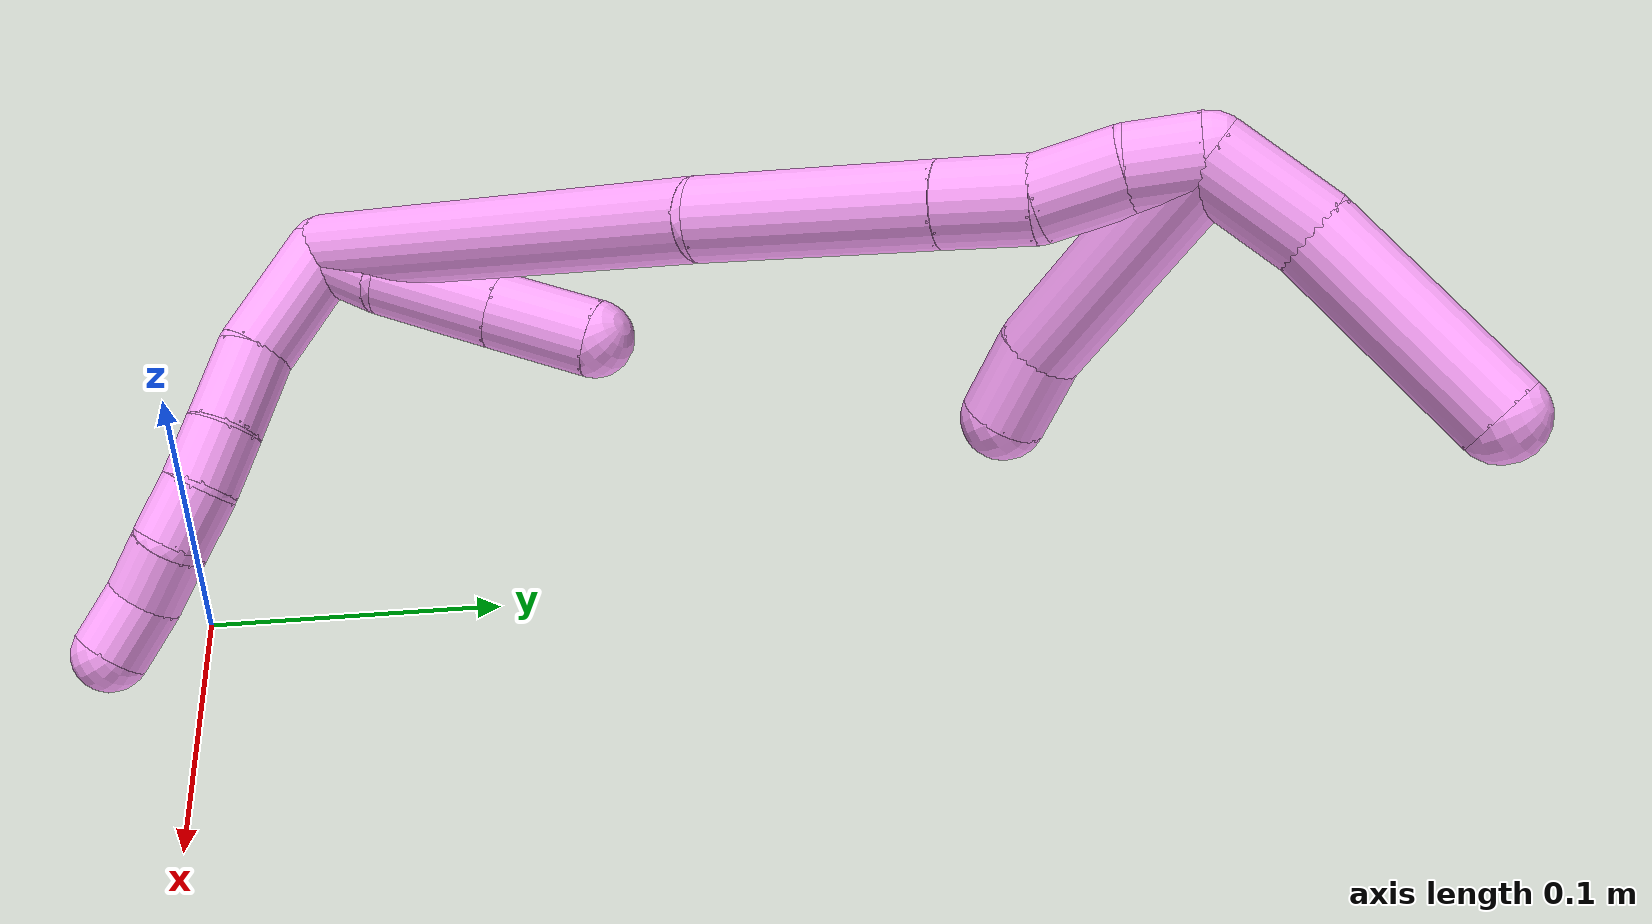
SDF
<sdf version="1.7">
 <world name="default">
  <model name="4">
   <static>0</static>
   <link name="4">
    <collision name="collision-cylinder-e_1_2_8">
     <pose>0.017571 -0.004792 -0.009901 2.69079 1.01147 2.35645</pose>
     <geometry><cylinder><radius>0.0125</radius><length>0.04146</length></cylinder></geometry>
     <surface>
      <friction><ode><mu>1.16</mu><mu2>1.16</mu2><slip1>0</slip1><slip2>0</slip2></ode></friction>
      <contact><ode><kp>1e+06</kp><kd>1</kd><max_vel>0</max_vel><min_depth>0.001</min_depth></ode></contact>
     </surface>
    </collision>
    <visual name="visual-cylinder-e_1_2_8">
     <pose>0.017571 -0.004792 -0.009901 2.69079 1.01147 2.35645</pose>
     <geometry><cylinder><radius>0.0125</radius><length>0.04146</length></cylinder></geometry>
     <material><ambient>1 0.65098 0.996078 1</ambient></material>
    </visual>
    <collision name="collision-cylinder-e_2_8_9">
     <pose>0.047732 -0.010441 -0.024837 2.97323 1.18536 2.89229</pose>
     <geometry><cylinder><radius>0.0125</radius><length>0.027173</length></cylinder></geometry>
     <surface>
      <friction><ode><mu>1.16</mu><mu2>1.16</mu2><slip1>0</slip1><slip2>0</slip2></ode></friction>
      <contact><ode><kp>1e+06</kp><kd>1</kd><max_vel>0</max_vel><min_depth>0.001</min_depth></ode></contact>
     </surface>
    </collision>
    <visual name="visual-cylinder-e_2_8_9">
     <pose>0.047732 -0.010441 -0.024837 2.97323 1.18536 2.89229</pose>
     <geometry><cylinder><radius>0.0125</radius><length>0.027173</length></cylinder></geometry>
     <material><ambient>1 0.65098 0.996078 1</ambient></material>
    </visual>
    <collision name="collision-cylinder-e_3_9_10">
     <pose>0.069387 -0.011506 -0.034481 3.09629 1.10013 3.06773</pose>
     <geometry><cylinder><radius>0.0125</radius><length>0.020344</length></cylinder></geometry>
     <surface>
      <friction><ode><mu>1.16</mu><mu2>1.16</mu2><slip1>0</slip1><slip2>0</slip2></ode></friction>
      <contact><ode><kp>1e+06</kp><kd>1</kd><max_vel>0</max_vel><min_depth>0.001</min_depth></ode></contact>
     </surface>
    </collision>
    <visual name="visual-cylinder-e_3_9_10">
     <pose>0.069387 -0.011506 -0.034481 3.09629 1.10013 3.06773</pose>
     <geometry><cylinder><radius>0.0125</radius><length>0.020344</length></cylinder></geometry>
     <material><ambient>1 0.65098 0.996078 1</ambient></material>
    </visual>
    <collision name="collision-cylinder-e_4_10_11">
     <pose>0.086561 -0.011788 -0.045192 3.12958 0.925475 3.11752</pose>
     <geometry><cylinder><radius>0.0125</radius><length>0.020298</length></cylinder></geometry>
     <surface>
      <friction><ode><mu>1.16</mu><mu2>1.16</mu2><slip1>0</slip1><slip2>0</slip2></ode></friction>
      <contact><ode><kp>1e+06</kp><kd>1</kd><max_vel>0</max_vel><min_depth>0.001</min_depth></ode></contact>
     </surface>
    </collision>
    <visual name="visual-cylinder-e_4_10_11">
     <pose>0.086561 -0.011788 -0.045192 3.12958 0.925475 3.11752</pose>
     <geometry><cylinder><radius>0.0125</radius><length>0.020298</length></cylinder></geometry>
     <material><ambient>1 0.65098 0.996078 1</ambient></material>
    </visual>
    <collision name="collision-cylinder-e_5_11_12">
     <pose>0.10078 -0.010299 -0.059072 -2.94333 0.656493 -2.57333</pose>
     <geometry><cylinder><radius>0.0125</radius><length>0.020024</length></cylinder></geometry>
     <surface>
      <friction><ode><mu>1.16</mu><mu2>1.16</mu2><slip1>0</slip1><slip2>0</slip2></ode></friction>
      <contact><ode><kp>1e+06</kp><kd>1</kd><max_vel>0</max_vel><min_depth>0.001</min_depth></ode></contact>
     </surface>
    </collision>
    <visual name="visual-cylinder-e_5_11_12">
     <pose>0.10078 -0.010299 -0.059072 -2.94333 0.656493 -2.57333</pose>
     <geometry><cylinder><radius>0.0125</radius><length>0.020024</length></cylinder></geometry>
     <material><ambient>1 0.65098 0.996078 1</ambient></material>
    </visual>
    <collision name="collision-cylinder-e_6_12_6">
     <pose>0.114513 -0.0092 -0.073835 3.07534 0.827685 2.99098</pose>
     <geometry><cylinder><radius>0.0125</radius><length>0.020702</length></cylinder></geometry>
     <surface>
      <friction><ode><mu>1.16</mu><mu2>1.16</mu2><slip1>0</slip1><slip2>0</slip2></ode></friction>
      <contact><ode><kp>1e+06</kp><kd>1</kd><max_vel>0</max_vel><min_depth>0.001</min_depth></ode></contact>
     </surface>
    </collision>
    <visual name="visual-cylinder-e_6_12_6">
     <pose>0.114513 -0.0092 -0.073835 3.07534 0.827685 2.99098</pose>
     <geometry><cylinder><radius>0.0125</radius><length>0.020702</length></cylinder></geometry>
     <material><ambient>1 0.65098 0.996078 1</ambient></material>
    </visual>
    <collision name="collision-cylinder-e_1_2_13">
     <pose>0.007215 0.005088 0.009901 -0.474741 0.57506 -0.142847</pose>
     <geometry><cylinder><radius>0.0125</radius><length>0.026531</length></cylinder></geometry>
     <surface>
      <friction><ode><mu>1.16</mu><mu2>1.16</mu2><slip1>0</slip1><slip2>0</slip2></ode></friction>
      <contact><ode><kp>1e+06</kp><kd>1</kd><max_vel>0</max_vel><min_depth>0.001</min_depth></ode></contact>
     </surface>
    </collision>
    <visual name="visual-cylinder-e_1_2_13">
     <pose>0.007215 0.005088 0.009901 -0.474741 0.57506 -0.142847</pose>
     <geometry><cylinder><radius>0.0125</radius><length>0.026531</length></cylinder></geometry>
     <material><ambient>1 0.65098 0.996078 1</ambient></material>
    </visual>
    <collision name="collision-cylinder-e_2_13_14">
     <pose>0.021866 0.021792 0.034136 -0.681007 0.383125 -0.137212</pose>
     <geometry><cylinder><radius>0.0125</radius><length>0.039784</length></cylinder></geometry>
     <surface>
      <friction><ode><mu>1.16</mu><mu2>1.16</mu2><slip1>0</slip1><slip2>0</slip2></ode></friction>
      <contact><ode><kp>1e+06</kp><kd>1</kd><max_vel>0</max_vel><min_depth>0.001</min_depth></ode></contact>
     </surface>
    </collision>
    <visual name="visual-cylinder-e_2_13_14">
     <pose>0.021866 0.021792 0.034136 -0.681007 0.383125 -0.137212</pose>
     <geometry><cylinder><radius>0.0125</radius><length>0.039784</length></cylinder></geometry>
     <material><ambient>1 0.65098 0.996078 1</ambient></material>
    </visual>
    <collision name="collision-cylinder-e_3_14_5">
     <pose>0.03556 0.043151 0.060701 -0.672682 0.380704 -0.134532</pose>
     <geometry><cylinder><radius>0.0125</radius><length>0.033685</length></cylinder></geometry>
     <surface>
      <friction><ode><mu>1.16</mu><mu2>1.16</mu2><slip1>0</slip1><slip2>0</slip2></ode></friction>
      <contact><ode><kp>1e+06</kp><kd>1</kd><max_vel>0</max_vel><min_depth>0.001</min_depth></ode></contact>
     </surface>
    </collision>
    <visual name="visual-cylinder-e_3_14_5">
     <pose>0.03556 0.043151 0.060701 -0.672682 0.380704 -0.134532</pose>
     <geometry><cylinder><radius>0.0125</radius><length>0.033685</length></cylinder></geometry>
     <material><ambient>1 0.65098 0.996078 1</ambient></material>
    </visual>
    <collision name="collision-cylinder-e_1_2_15">
     <pose>0.024437 0.010792 0.07258 -0.147604 0.321479 -0.023975</pose>
     <geometry><cylinder><radius>0.0125</radius><length>0.154681</length></cylinder></geometry>
     <surface>
      <friction><ode><mu>1.16</mu><mu2>1.16</mu2><slip1>0</slip1><slip2>0</slip2></ode></friction>
      <contact><ode><kp>1e+06</kp><kd>1</kd><max_vel>0</max_vel><min_depth>0.001</min_depth></ode></contact>
     </surface>
    </collision>
    <visual name="visual-cylinder-e_1_2_15">
     <pose>0.024437 0.010792 0.07258 -0.147604 0.321479 -0.023975</pose>
     <geometry><cylinder><radius>0.0125</radius><length>0.154681</length></cylinder></geometry>
     <material><ambient>1 0.65098 0.996078 1</ambient></material>
    </visual>
    <collision name="collision-cylinder-e_2_15_16">
     <pose>0.056119 0.034529 0.178164 -0.373817 0.201579 -0.038247</pose>
     <geometry><cylinder><radius>0.0125</radius><length>0.072369</length></cylinder></geometry>
     <surface>
      <friction><ode><mu>1.16</mu><mu2>1.16</mu2><slip1>0</slip1><slip2>0</slip2></ode></friction>
      <contact><ode><kp>1e+06</kp><kd>1</kd><max_vel>0</max_vel><min_depth>0.001</min_depth></ode></contact>
     </surface>
    </collision>
    <visual name="visual-cylinder-e_2_15_16">
     <pose>0.056119 0.034529 0.178164 -0.373817 0.201579 -0.038247</pose>
     <geometry><cylinder><radius>0.0125</radius><length>0.072369</length></cylinder></geometry>
     <material><ambient>1 0.65098 0.996078 1</ambient></material>
    </visual>
    <collision name="collision-cylinder-e_3_16_17">
     <pose>0.066026 0.052603 0.22354 -0.392926 0.196175 -0.039165</pose>
     <geometry><cylinder><radius>0.0125</radius><length>0.02731</length></cylinder></geometry>
     <surface>
      <friction><ode><mu>1.16</mu><mu2>1.16</mu2><slip1>0</slip1><slip2>0</slip2></ode></friction>
      <contact><ode><kp>1e+06</kp><kd>1</kd><max_vel>0</max_vel><min_depth>0.001</min_depth></ode></contact>
     </surface>
    </collision>
    <visual name="visual-cylinder-e_3_16_17">
     <pose>0.066026 0.052603 0.22354 -0.392926 0.196175 -0.039165</pose>
     <geometry><cylinder><radius>0.0125</radius><length>0.02731</length></cylinder></geometry>
     <material><ambient>1 0.65098 0.996078 1</ambient></material>
    </visual>
    <collision name="collision-cylinder-e_4_17_18">
     <pose>0.068147 0.061119 0.247955 -0.274183 -0.043132 0.005951</pose>
     <geometry><cylinder><radius>0.0125</radius><length>0.025042</length></cylinder></geometry>
     <surface>
      <friction><ode><mu>1.16</mu><mu2>1.16</mu2><slip1>0</slip1><slip2>0</slip2></ode></friction>
      <contact><ode><kp>1e+06</kp><kd>1</kd><max_vel>0</max_vel><min_depth>0.001</min_depth></ode></contact>
     </surface>
    </collision>
    <visual name="visual-cylinder-e_4_17_18">
     <pose>0.068147 0.061119 0.247955 -0.274183 -0.043132 0.005951</pose>
     <geometry><cylinder><radius>0.0125</radius><length>0.025042</length></cylinder></geometry>
     <material><ambient>1 0.65098 0.996078 1</ambient></material>
    </visual>
    <collision name="collision-cylinder-e_5_18_1">
     <pose>0.068338 0.068683 0.269383 -0.418709 0.070964 -0.015084</pose>
     <geometry><cylinder><radius>0.0125</radius><length>0.020598</length></cylinder></geometry>
     <surface>
      <friction><ode><mu>1.16</mu><mu2>1.16</mu2><slip1>0</slip1><slip2>0</slip2></ode></friction>
      <contact><ode><kp>1e+06</kp><kd>1</kd><max_vel>0</max_vel><min_depth>0.001</min_depth></ode></contact>
     </surface>
    </collision>
    <visual name="visual-cylinder-e_5_18_1">
     <pose>0.068338 0.068683 0.269383 -0.418709 0.070964 -0.015084</pose>
     <geometry><cylinder><radius>0.0125</radius><length>0.020598</length></cylinder></geometry>
     <material><ambient>1 0.65098 0.996078 1</ambient></material>
    </visual>
    <collision name="collision-cylinder-e_1_1_19">
     <pose>0.078927 0.084427 0.286224 -0.99826 0.62164 -0.346738</pose>
     <geometry><cylinder><radius>0.0125</radius><length>0.033859</length></cylinder></geometry>
     <surface>
      <friction><ode><mu>1.16</mu><mu2>1.16</mu2><slip1>0</slip1><slip2>0</slip2></ode></friction>
      <contact><ode><kp>1e+06</kp><kd>1</kd><max_vel>0</max_vel><min_depth>0.001</min_depth></ode></contact>
     </surface>
    </collision>
    <visual name="visual-cylinder-e_1_1_19">
     <pose>0.078927 0.084427 0.286224 -0.99826 0.62164 -0.346738</pose>
     <geometry><cylinder><radius>0.0125</radius><length>0.033859</length></cylinder></geometry>
     <material><ambient>1 0.65098 0.996078 1</ambient></material>
    </visual>
    <collision name="collision-cylinder-e_2_19_4">
     <pose>0.113377 0.114572 0.305674 -0.997504 0.838414 -0.476236</pose>
     <geometry><cylinder><radius>0.0125</radius><length>0.066141</length></cylinder></geometry>
     <surface>
      <friction><ode><mu>1.16</mu><mu2>1.16</mu2><slip1>0</slip1><slip2>0</slip2></ode></friction>
      <contact><ode><kp>1e+06</kp><kd>1</kd><max_vel>0</max_vel><min_depth>0.001</min_depth></ode></contact>
     </surface>
    </collision>
    <visual name="visual-cylinder-e_2_19_4">
     <pose>0.113377 0.114572 0.305674 -0.997504 0.838414 -0.476236</pose>
     <geometry><cylinder><radius>0.0125</radius><length>0.066141</length></cylinder></geometry>
     <material><ambient>1 0.65098 0.996078 1</ambient></material>
    </visual>
    <collision name="collision-cylinder-e_1_1_20">
     <pose>0.07755 0.084458 0.243461 -2.82418 0.224397 -1.22679</pose>
     <geometry><cylinder><radius>0.0125</radius><length>0.07624</length></cylinder></geometry>
     <surface>
      <friction><ode><mu>1.16</mu><mu2>1.16</mu2><slip1>0</slip1><slip2>0</slip2></ode></friction>
      <contact><ode><kp>1e+06</kp><kd>1</kd><max_vel>0</max_vel><min_depth>0.001</min_depth></ode></contact>
     </surface>
    </collision>
    <visual name="visual-cylinder-e_1_1_20">
     <pose>0.07755 0.084458 0.243461 -2.82418 0.224397 -1.22679</pose>
     <geometry><cylinder><radius>0.0125</radius><length>0.07624</length></cylinder></geometry>
     <material><ambient>1 0.65098 0.996078 1</ambient></material>
    </visual>
    <collision name="collision-cylinder-e_2_20_3">
     <pose>0.091439 0.100043 0.198353 -2.75535 0.472448 -1.77709</pose>
     <geometry><cylinder><radius>0.0125</radius><length>0.02376</length></cylinder></geometry>
     <surface>
      <friction><ode><mu>1.16</mu><mu2>1.16</mu2><slip1>0</slip1><slip2>0</slip2></ode></friction>
      <contact><ode><kp>1e+06</kp><kd>1</kd><max_vel>0</max_vel><min_depth>0.001</min_depth></ode></contact>
     </surface>
    </collision>
    <visual name="visual-cylinder-e_2_20_3">
     <pose>0.091439 0.100043 0.198353 -2.75535 0.472448 -1.77709</pose>
     <geometry><cylinder><radius>0.0125</radius><length>0.02376</length></cylinder></geometry>
     <material><ambient>1 0.65098 0.996078 1</ambient></material>
    </visual>
    <collision name="collision-sphere-3">
     <pose>0.096845 0.104028 0.188554 0 -0 0</pose>
     <geometry><sphere><radius>0.0125</radius></sphere></geometry>
     <surface>
      <friction><ode><mu>1.16</mu><mu2>1.16</mu2><slip1>0</slip1><slip2>0</slip2></ode></friction>
      <contact><ode><kp>1e+06</kp><kd>1</kd><max_vel>0</max_vel><min_depth>0.001</min_depth></ode></contact>
     </surface>
    </collision>
    <visual name="visual-sphere-3">
     <pose>0.096845 0.104028 0.188554 0 -0 0</pose>
     <geometry><sphere><radius>0.0125</radius></sphere></geometry>
     <material><ambient>1 0.65098 0.996078 1</ambient></material>
    </visual>
    <collision name="collision-sphere-20">
     <pose>0.086033 0.096057 0.208153 0 -0 0</pose>
     <geometry><sphere><radius>0.0125</radius></sphere></geometry>
     <surface>
      <friction><ode><mu>1.16</mu><mu2>1.16</mu2><slip1>0</slip1><slip2>0</slip2></ode></friction>
      <contact><ode><kp>1e+06</kp><kd>1</kd><max_vel>0</max_vel><min_depth>0.001</min_depth></ode></contact>
     </surface>
    </collision>
    <visual name="visual-sphere-20">
     <pose>0.086033 0.096057 0.208153 0 -0 0</pose>
     <geometry><sphere><radius>0.0125</radius></sphere></geometry>
     <material><ambient>1 0.65098 0.996078 1</ambient></material>
    </visual>
    <collision name="collision-sphere-4">
     <pose>0.137968 0.133149 0.317668 0 -0 0</pose>
     <geometry><sphere><radius>0.0125</radius></sphere></geometry>
     <surface>
      <friction><ode><mu>1.16</mu><mu2>1.16</mu2><slip1>0</slip1><slip2>0</slip2></ode></friction>
      <contact><ode><kp>1e+06</kp><kd>1</kd><max_vel>0</max_vel><min_depth>0.001</min_depth></ode></contact>
     </surface>
    </collision>
    <visual name="visual-sphere-4">
     <pose>0.137968 0.133149 0.317668 0 -0 0</pose>
     <geometry><sphere><radius>0.0125</radius></sphere></geometry>
     <material><ambient>1 0.65098 0.996078 1</ambient></material>
    </visual>
    <collision name="collision-sphere-12">
     <pose>0.106891 -0.008737 -0.066847 0 -0 0</pose>
     <geometry><sphere><radius>0.0125</radius></sphere></geometry>
     <surface>
      <friction><ode><mu>1.16</mu><mu2>1.16</mu2><slip1>0</slip1><slip2>0</slip2></ode></friction>
      <contact><ode><kp>1e+06</kp><kd>1</kd><max_vel>0</max_vel><min_depth>0.001</min_depth></ode></contact>
     </surface>
    </collision>
    <visual name="visual-sphere-12">
     <pose>0.106891 -0.008737 -0.066847 0 -0 0</pose>
     <geometry><sphere><radius>0.0125</radius></sphere></geometry>
     <material><ambient>1 0.65098 0.996078 1</ambient></material>
    </visual>
    <collision name="collision-sphere-11">
     <pose>0.094669 -0.011861 -0.051296 0 -0 0</pose>
     <geometry><sphere><radius>0.0125</radius></sphere></geometry>
     <surface>
      <friction><ode><mu>1.16</mu><mu2>1.16</mu2><slip1>0</slip1><slip2>0</slip2></ode></friction>
      <contact><ode><kp>1e+06</kp><kd>1</kd><max_vel>0</max_vel><min_depth>0.001</min_depth></ode></contact>
     </surface>
    </collision>
    <visual name="visual-sphere-11">
     <pose>0.094669 -0.011861 -0.051296 0 -0 0</pose>
     <geometry><sphere><radius>0.0125</radius></sphere></geometry>
     <material><ambient>1 0.65098 0.996078 1</ambient></material>
    </visual>
    <collision name="collision-sphere-10">
     <pose>0.078453 -0.011714 -0.039089 0 -0 0</pose>
     <geometry><sphere><radius>0.0125</radius></sphere></geometry>
     <surface>
      <friction><ode><mu>1.16</mu><mu2>1.16</mu2><slip1>0</slip1><slip2>0</slip2></ode></friction>
      <contact><ode><kp>1e+06</kp><kd>1</kd><max_vel>0</max_vel><min_depth>0.001</min_depth></ode></contact>
     </surface>
    </collision>
    <visual name="visual-sphere-10">
     <pose>0.078453 -0.011714 -0.039089 0 -0 0</pose>
     <geometry><sphere><radius>0.0125</radius></sphere></geometry>
     <material><ambient>1 0.65098 0.996078 1</ambient></material>
    </visual>
    <collision name="collision-sphere-9">
     <pose>0.060321 -0.011297 -0.029873 0 -0 0</pose>
     <geometry><sphere><radius>0.0125</radius></sphere></geometry>
     <surface>
      <friction><ode><mu>1.16</mu><mu2>1.16</mu2><slip1>0</slip1><slip2>0</slip2></ode></friction>
      <contact><ode><kp>1e+06</kp><kd>1</kd><max_vel>0</max_vel><min_depth>0.001</min_depth></ode></contact>
     </surface>
    </collision>
    <visual name="visual-sphere-9">
     <pose>0.060321 -0.011297 -0.029873 0 -0 0</pose>
     <geometry><sphere><radius>0.0125</radius></sphere></geometry>
     <material><ambient>1 0.65098 0.996078 1</ambient></material>
    </visual>
    <collision name="collision-sphere-2">
     <geometry><sphere><radius>0.0125</radius></sphere></geometry>
     <surface>
      <friction><ode><mu>1.16</mu><mu2>1.16</mu2><slip1>0</slip1><slip2>0</slip2></ode></friction>
      <contact><ode><kp>1e+06</kp><kd>1</kd><max_vel>0</max_vel><min_depth>0.001</min_depth></ode></contact>
     </surface>
    </collision>
    <visual name="visual-sphere-2">
     <geometry><sphere><radius>0.0125</radius></sphere></geometry>
     <material><ambient>1 0.65098 0.996078 1</ambient></material>
    </visual>
    <collision name="collision-sphere-19">
     <pose>0.088786 0.095995 0.29368 0 -0 0</pose>
     <geometry><sphere><radius>0.0125</radius></sphere></geometry>
     <surface>
      <friction><ode><mu>1.16</mu><mu2>1.16</mu2><slip1>0</slip1><slip2>0</slip2></ode></friction>
      <contact><ode><kp>1e+06</kp><kd>1</kd><max_vel>0</max_vel><min_depth>0.001</min_depth></ode></contact>
     </surface>
    </collision>
    <visual name="visual-sphere-19">
     <pose>0.088786 0.095995 0.29368 0 -0 0</pose>
     <geometry><sphere><radius>0.0125</radius></sphere></geometry>
     <material><ambient>1 0.65098 0.996078 1</ambient></material>
    </visual>
    <collision name="collision-sphere-8">
     <pose>0.035142 -0.009585 -0.019801 0 -0 0</pose>
     <geometry><sphere><radius>0.0125</radius></sphere></geometry>
     <surface>
      <friction><ode><mu>1.16</mu><mu2>1.16</mu2><slip1>0</slip1><slip2>0</slip2></ode></friction>
      <contact><ode><kp>1e+06</kp><kd>1</kd><max_vel>0</max_vel><min_depth>0.001</min_depth></ode></contact>
     </surface>
    </collision>
    <visual name="visual-sphere-8">
     <pose>0.035142 -0.009585 -0.019801 0 -0 0</pose>
     <geometry><sphere><radius>0.0125</radius></sphere></geometry>
     <material><ambient>1 0.65098 0.996078 1</ambient></material>
    </visual>
    <collision name="collision-sphere-6">
     <pose>0.122135 -0.009664 -0.080823 0 -0 0</pose>
     <geometry><sphere><radius>0.0125</radius></sphere></geometry>
     <surface>
      <friction><ode><mu>1.16</mu><mu2>1.16</mu2><slip1>0</slip1><slip2>0</slip2></ode></friction>
      <contact><ode><kp>1e+06</kp><kd>1</kd><max_vel>0</max_vel><min_depth>0.001</min_depth></ode></contact>
     </surface>
    </collision>
    <visual name="visual-sphere-6">
     <pose>0.122135 -0.009664 -0.080823 0 -0 0</pose>
     <geometry><sphere><radius>0.0125</radius></sphere></geometry>
     <material><ambient>1 0.65098 0.996078 1</ambient></material>
    </visual>
    <collision name="collision-sphere-13">
     <pose>0.01443 0.010177 0.019802 0 -0 0</pose>
     <geometry><sphere><radius>0.0125</radius></sphere></geometry>
     <surface>
      <friction><ode><mu>1.16</mu><mu2>1.16</mu2><slip1>0</slip1><slip2>0</slip2></ode></friction>
      <contact><ode><kp>1e+06</kp><kd>1</kd><max_vel>0</max_vel><min_depth>0.001</min_depth></ode></contact>
     </surface>
    </collision>
    <visual name="visual-sphere-13">
     <pose>0.01443 0.010177 0.019802 0 -0 0</pose>
     <geometry><sphere><radius>0.0125</radius></sphere></geometry>
     <material><ambient>1 0.65098 0.996078 1</ambient></material>
    </visual>
    <collision name="collision-sphere-14">
     <pose>0.029302 0.033408 0.04847 0 -0 0</pose>
     <geometry><sphere><radius>0.0125</radius></sphere></geometry>
     <surface>
      <friction><ode><mu>1.16</mu><mu2>1.16</mu2><slip1>0</slip1><slip2>0</slip2></ode></friction>
      <contact><ode><kp>1e+06</kp><kd>1</kd><max_vel>0</max_vel><min_depth>0.001</min_depth></ode></contact>
     </surface>
    </collision>
    <visual name="visual-sphere-14">
     <pose>0.029302 0.033408 0.04847 0 -0 0</pose>
     <geometry><sphere><radius>0.0125</radius></sphere></geometry>
     <material><ambient>1 0.65098 0.996078 1</ambient></material>
    </visual>
    <collision name="collision-sphere-5">
     <pose>0.041818 0.052894 0.072931 0 -0 0</pose>
     <geometry><sphere><radius>0.0125</radius></sphere></geometry>
     <surface>
      <friction><ode><mu>1.16</mu><mu2>1.16</mu2><slip1>0</slip1><slip2>0</slip2></ode></friction>
      <contact><ode><kp>1e+06</kp><kd>1</kd><max_vel>0</max_vel><min_depth>0.001</min_depth></ode></contact>
     </surface>
    </collision>
    <visual name="visual-sphere-5">
     <pose>0.041818 0.052894 0.072931 0 -0 0</pose>
     <geometry><sphere><radius>0.0125</radius></sphere></geometry>
     <material><ambient>1 0.65098 0.996078 1</ambient></material>
    </visual>
    <collision name="collision-sphere-15">
     <pose>0.048874 0.021583 0.145161 0 -0 0</pose>
     <geometry><sphere><radius>0.0125</radius></sphere></geometry>
     <surface>
      <friction><ode><mu>1.16</mu><mu2>1.16</mu2><slip1>0</slip1><slip2>0</slip2></ode></friction>
      <contact><ode><kp>1e+06</kp><kd>1</kd><max_vel>0</max_vel><min_depth>0.001</min_depth></ode></contact>
     </surface>
    </collision>
    <visual name="visual-sphere-15">
     <pose>0.048874 0.021583 0.145161 0 -0 0</pose>
     <geometry><sphere><radius>0.0125</radius></sphere></geometry>
     <material><ambient>1 0.65098 0.996078 1</ambient></material>
    </visual>
    <collision name="collision-sphere-16">
     <pose>0.063364 0.047475 0.211168 0 -0 0</pose>
     <geometry><sphere><radius>0.0125</radius></sphere></geometry>
     <surface>
      <friction><ode><mu>1.16</mu><mu2>1.16</mu2><slip1>0</slip1><slip2>0</slip2></ode></friction>
      <contact><ode><kp>1e+06</kp><kd>1</kd><max_vel>0</max_vel><min_depth>0.001</min_depth></ode></contact>
     </surface>
    </collision>
    <visual name="visual-sphere-16">
     <pose>0.063364 0.047475 0.211168 0 -0 0</pose>
     <geometry><sphere><radius>0.0125</radius></sphere></geometry>
     <material><ambient>1 0.65098 0.996078 1</ambient></material>
    </visual>
    <collision name="collision-sphere-17">
     <pose>0.068687 0.057732 0.235913 0 -0 0</pose>
     <geometry><sphere><radius>0.0125</radius></sphere></geometry>
     <surface>
      <friction><ode><mu>1.16</mu><mu2>1.16</mu2><slip1>0</slip1><slip2>0</slip2></ode></friction>
      <contact><ode><kp>1e+06</kp><kd>1</kd><max_vel>0</max_vel><min_depth>0.001</min_depth></ode></contact>
     </surface>
    </collision>
    <visual name="visual-sphere-17">
     <pose>0.068687 0.057732 0.235913 0 -0 0</pose>
     <geometry><sphere><radius>0.0125</radius></sphere></geometry>
     <material><ambient>1 0.65098 0.996078 1</ambient></material>
    </visual>
    <collision name="collision-sphere-18">
     <pose>0.067607 0.064506 0.259997 0 -0 0</pose>
     <geometry><sphere><radius>0.0125</radius></sphere></geometry>
     <surface>
      <friction><ode><mu>1.16</mu><mu2>1.16</mu2><slip1>0</slip1><slip2>0</slip2></ode></friction>
      <contact><ode><kp>1e+06</kp><kd>1</kd><max_vel>0</max_vel><min_depth>0.001</min_depth></ode></contact>
     </surface>
    </collision>
    <visual name="visual-sphere-18">
     <pose>0.067607 0.064506 0.259997 0 -0 0</pose>
     <geometry><sphere><radius>0.0125</radius></sphere></geometry>
     <material><ambient>1 0.65098 0.996078 1</ambient></material>
    </visual>
    <collision name="collision-sphere-1">
     <pose>0.069068 0.072859 0.278768 0 -0 0</pose>
     <geometry><sphere><radius>0.0125</radius></sphere></geometry>
     <surface>
      <friction><ode><mu>1.16</mu><mu2>1.16</mu2><slip1>0</slip1><slip2>0</slip2></ode></friction>
      <contact><ode><kp>1e+06</kp><kd>1</kd><max_vel>0</max_vel><min_depth>0.001</min_depth></ode></contact>
     </surface>
    </collision>
    <visual name="visual-sphere-1">
     <pose>0.069068 0.072859 0.278768 0 -0 0</pose>
     <geometry><sphere><radius>0.0125</radius></sphere></geometry>
     <material><ambient>1 0.65098 0.996078 1</ambient></material>
    </visual>
    <inertial>
     <pose>0.057142 0.038541 0.124555 0 -0 0</pose>
     <mass>0.75</mass>
     <inertia>
      <ixx>0.000346</ixx>
      <ixy>0</ixy>
      <ixz>0</ixz>
      <iyy>0.000351</iyy>
      <iyz>0</iyz>
      <izz>-0.000236</izz>
     </inertia>
    </inertial>
   </link>
   <pose>-0.047757 0.051631 0.120963 -0.835025 0.331679 -0.074688</pose>
  </model>
 </world>
</sdf>
